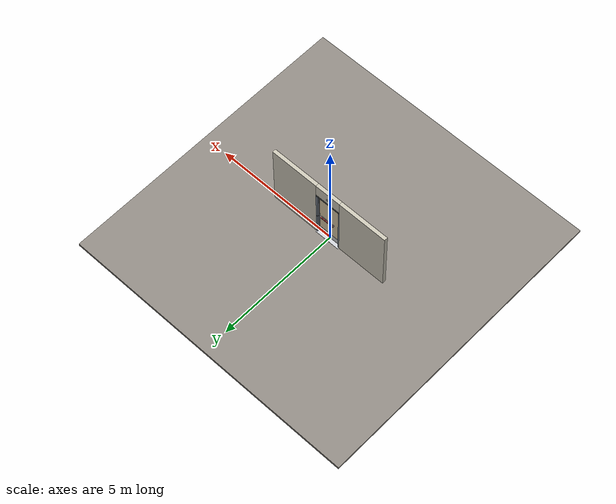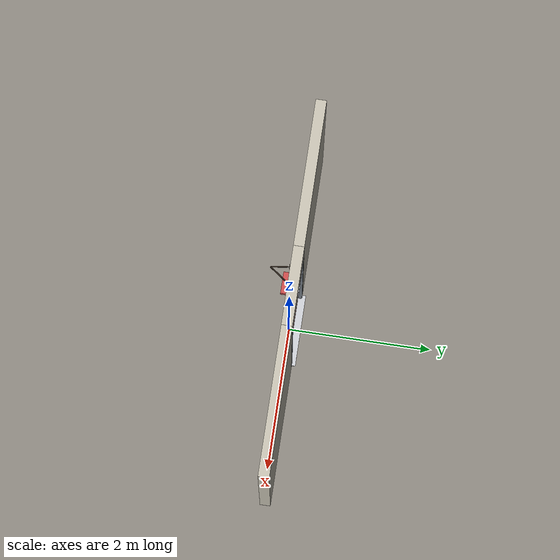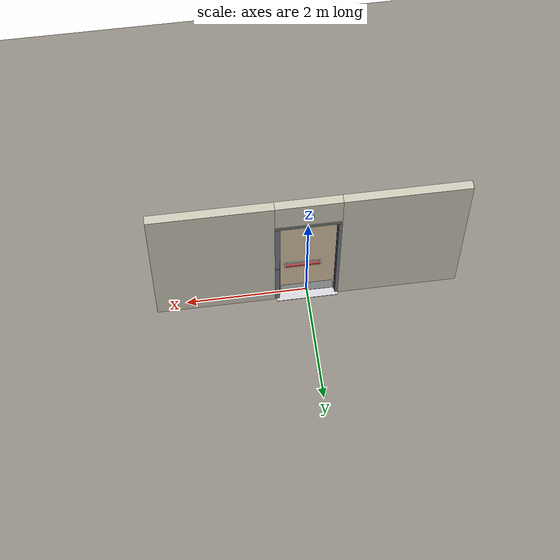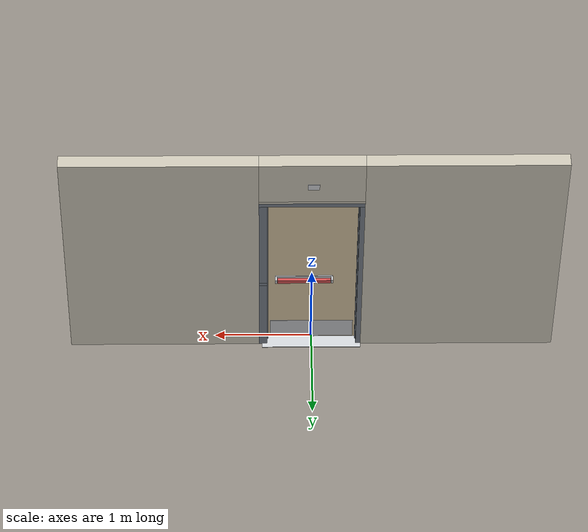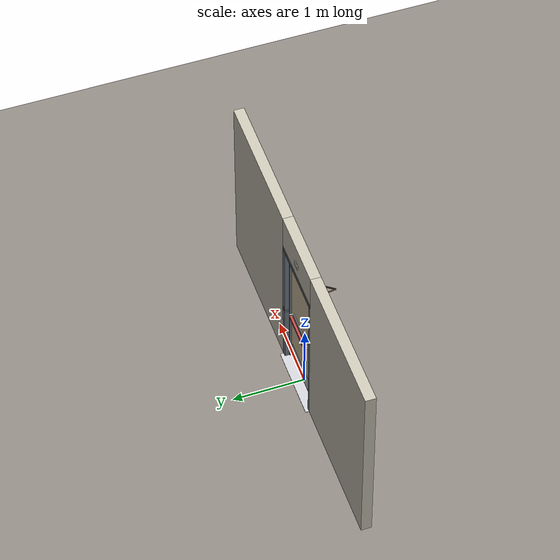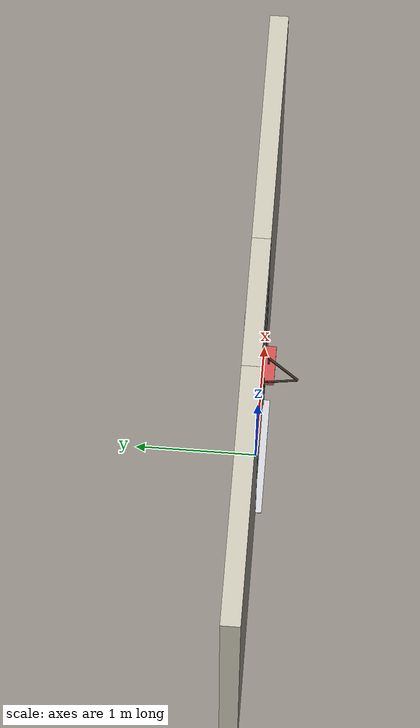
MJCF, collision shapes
<?xml version="1.0" ?>
<mujoco model="db0463_swing_single_full">
  <compiler angle="radian" meshdir="../../hardware" texturedir="../../textures" autolimits="true" inertiafromgeom="false"/>
  <option timestep="0.002" integrator="implicitfast" cone="elliptic" impratio="10" noslip_iterations="3">
    <flag multiccd="enable"/>
  </option>
  <size memory="16M"/>
  <default>
    <geom condim="4" solref="0.005 1" solimp="0.95 0.99 0.001"/>
    <joint solreflimit="0.005 1" solimplimit="0.95 0.99 0.001"/>
    <tendon solreflimit="0.005 1"/>
    <equality solref="0.002 1"/>
  </default>
  <visual>
    <headlight ambient="0.4 0.4 0.4" diffuse="0.7 0.7 0.7" specular="0.2 0.2 0.2"/>
    <quality shadowsize="4096"/>
    <map znear="0.01" zfar="60"/>
  </visual>
  <asset>
    <mesh name="closer_body_fdc4667657" file="closer_body_fdc4667657.obj"/>
    <mesh name="exit_sign_a6449bfa2c" file="exit_sign_a6449bfa2c.obj"/>
    <mesh name="hinge_e22b26c0c1" file="hinge_e22b26c0c1.obj"/>
    <mesh name="hinge_jamb_e1d088f8dc" file="hinge_jamb_e1d088f8dc.obj"/>
    <mesh name="touchbar_pad_5c88f1c24f" file="touchbar_pad_5c88f1c24f.obj"/>
    <material name="mat_floor" rgba="0.55 0.53 0.5 1" specular="0.2" shininess="0.15" reflectance="0"/>
    <material name="mat_wall" rgba="0.78 0.76 0.7 1" specular="0.2" shininess="0.1" reflectance="0"/>
    <material name="mat_leaf" rgba="0.82 0.75 0.62 1" specular="0.23" shininess="0.53" reflectance="0.02"/>
    <material name="mat_leaf_louver" rgba="0.697 0.637 0.527 1" specular="0.2" shininess="0.4" reflectance="0"/>
    <material name="mat_hinge" rgba="0.65 0.66 0.68 1" specular="0.74" shininess="0.5" reflectance="0.36"/>
    <material name="mat_op_stainless" rgba="0.75 0.76 0.77 1" specular="0.8" shininess="0.65" reflectance="0.4"/>
    <material name="mat_bolt" rgba="0.75 0.76 0.77 1" specular="0.8" shininess="0.65" reflectance="0.4"/>
    <material name="mat_frame" rgba="0.45 0.48 0.52 1" specular="0.32" shininess="0.6" reflectance="0.08"/>
    <material name="mat_seal" rgba="0.1 0.1 0.1 1" specular="0.2" shininess="0.1" reflectance="0"/>
    <material name="mat_threshold" rgba="0.8 0.81 0.83 1" specular="0.8" shininess="0.6" reflectance="0.4"/>
    <material name="mat_closer" rgba="0.22 0.17 0.13 1" specular="0.8" shininess="0.6" reflectance="0.4"/>
    <material name="mat_kick" rgba="0.75 0.76 0.77 1" specular="0.8" shininess="0.65" reflectance="0.4"/>
    <material name="mat_exit_sign" rgba="0.85 0.1 0.1 1" specular="0.2" shininess="0.6" reflectance="0"/>
    <material name="mat_sign_bracket" rgba="0.8 0.81 0.83 1" specular="0.8" shininess="0.6" reflectance="0.4"/>
    <material name="mat_placard" rgba="0.95 0.75 0.05 1" specular="0.2" shininess="0.5" reflectance="0"/>
    <texture name="skybox" type="skybox" builtin="gradient" rgb1="0.6 0.7 0.85" rgb2="0.9 0.92 0.95" width="256" height="256"/>
  </asset>
  <worldbody>
    <light name="sun" pos="1.5 -2.5 4" dir="-0.3 0.5 -0.8" directional="true" diffuse="0.8 0.8 0.8" specular="0.3 0.3 0.3" castshadow="true"/>
    <light name="fill" pos="-1.5 2.5 3" dir="0.3 -0.5 -0.7" directional="true" diffuse="0.35 0.35 0.4" castshadow="false"/>
    <camera name="robot_view" pos="0 -2.594313 1.812087" xyaxes="1 0 0 0 0.26963 0.962964" fovy="52"/>
    <camera name="far_view" pos="0 2.681312 1.812087" xyaxes="-1 0 0 0 -0.26963 0.962964" fovy="52"/>
    <camera name="iso" pos="2.004737 -2.172262 2.234138" xyaxes="0.741536 0.670913 0 -0.242917 0.268487 0.932151" fovy="46"/>
    <camera name="detail_handle" pos="0.5335 -0.7565 1.245" xyaxes="0.97561 0.219512 0 -0.070934 0.315262 0.94635" fovy="38"/>
    <geom name="floor" type="box" size="6 6 0.05" pos="0 0 -0.05" material="mat_floor" group="0" contype="1" conaffinity="1" friction="0.8 0.005 0.0001" density="2400"/>
    <geom name="wall_left" type="box" size="0.99475 0.0725 1.3735" pos="-1.50525 0.0435 1.3735" material="mat_wall" group="0" contype="1" conaffinity="1" friction="0.6 0.005 0.0001" density="800"/>
    <geom name="wall_right" type="box" size="0.97975 0.0725 1.3735" pos="1.52025 0.0435 1.3735" material="mat_wall" group="0" contype="1" conaffinity="1" friction="0.6 0.005 0.0001" density="800"/>
    <geom name="wall_header" type="box" size="0.5255 0.0725 0.26" pos="0.015 0.0435 2.487" material="mat_wall" group="0" contype="1" conaffinity="1" friction="0.6 0.005 0.0001" density="800"/>
    <geom name="hinge_0_jamb" type="mesh" mesh="hinge_jamb_e1d088f8dc" pos="-0.4575 -0.029 0.259" material="mat_hinge" group="1" contype="0" conaffinity="0" density="7850"/>
    <geom name="hinge_1_jamb" type="mesh" mesh="hinge_jamb_e1d088f8dc" pos="-0.4575 -0.029 0.827" material="mat_hinge" group="1" contype="0" conaffinity="0" density="7850"/>
    <geom name="hinge_2_jamb" type="mesh" mesh="hinge_jamb_e1d088f8dc" pos="-0.4575 -0.029 1.395" material="mat_hinge" group="1" contype="0" conaffinity="0" density="7850"/>
    <geom name="hinge_3_jamb" type="mesh" mesh="hinge_jamb_e1d088f8dc" pos="-0.4575 -0.029 1.963" material="mat_hinge" group="1" contype="0" conaffinity="0" density="7850"/>
    <geom name="jamb_hinge" type="box" size="0.025 0.0725 1.0735" pos="-0.4855 0.0435 1.0735" material="mat_frame" group="0" contype="1" conaffinity="1" friction="0.6 0.005 0.0001" density="300"/>
    <geom name="strike_965_wall_n" type="box" size="0.04 0.05325 0.018" pos="0.5005 0.06275 0.965" material="mat_frame" group="0" contype="1" conaffinity="1" friction="0.6 0.005 0.0001" density="300"/>
    <geom name="strike_965_wall_p" type="box" size="0.04 0.008 0.018" pos="0.5005 -0.0175 0.965" material="mat_frame" group="0" contype="1" conaffinity="1" friction="0.6 0.005 0.0001" density="300"/>
    <geom name="strike_965_ramp" type="box" size="0.04 0.018028 0.018" pos="0.503782 -0.018312 0.965" quat="0.957092 0 0 0.289784" material="mat_frame" group="0" contype="1" conaffinity="1" friction="0.12 0.005 0.0001" density="300"/>
    <geom name="strike_965_back" type="box" size="0.0285 0.0095 0.018" pos="0.512 0 0.965" material="mat_frame" group="0" contype="1" conaffinity="1" friction="0.6 0.005 0.0001" density="300"/>
    <geom name="jamb_strike_0" type="box" size="0.04 0.0725 0.4735" pos="0.5005 0.0435 0.4735" material="mat_frame" group="0" contype="1" conaffinity="1" friction="0.6 0.005 0.0001" density="300"/>
    <geom name="jamb_strike_1" type="box" size="0.04 0.0725 0.582" pos="0.5005 0.0435 1.565" material="mat_frame" group="0" contype="1" conaffinity="1" friction="0.6 0.005 0.0001" density="300"/>
    <geom name="jamb_head" type="box" size="0.5255 0.0725 0.025" pos="0.015 0.0435 2.172" material="mat_frame" group="0" contype="1" conaffinity="1" friction="0.6 0.005 0.0001" density="300"/>
    <geom name="head_stud" type="box" size="0.5255 0.0725 0.015" pos="0.015 0.0435 2.212" material="mat_wall" group="0" contype="1" conaffinity="1" friction="0.6 0.005 0.0001" density="500"/>
    <geom name="stop_hinge" type="box" size="0.0055 0.016 1.0735" pos="-0.455 0.0385 1.0735" material="mat_frame" group="0" contype="1" conaffinity="1" friction="0.6 0.005 0.0001" density="300"/>
    <geom name="stop_strike" type="box" size="0.0055 0.016 1.0735" pos="0.455 0.0385 1.0735" material="mat_frame" group="0" contype="1" conaffinity="1" friction="0.6 0.005 0.0001" density="300"/>
    <geom name="stop_head" type="box" size="0.4605 0.016 0.0055" pos="0 0.0385 2.1415" material="mat_frame" group="0" contype="1" conaffinity="1" friction="0.6 0.005 0.0001" density="300"/>
    <geom name="seal_hinge" type="box" size="0.004 0.0025 1.0735" pos="-0.4575 0.0245 1.0735" material="mat_seal" group="1" contype="0" conaffinity="0" density="1100"/>
    <geom name="seal_strike" type="box" size="0.004 0.0025 1.0735" pos="0.4575 0.0245 1.0735" material="mat_seal" group="1" contype="0" conaffinity="0" density="1100"/>
    <geom name="seal_head" type="box" size="0.4405 0.0025 0.008" pos="0 0.0245 2.135" material="mat_seal" group="1" contype="0" conaffinity="0" density="1100"/>
    <geom name="threshold" type="box" size="0.5105 0.1225 0.004" pos="0 0.0435 0.004" material="mat_threshold" group="0" contype="1" conaffinity="1" friction="0.6 0.005 0.0001" density="2700"/>
    <geom name="closer_bracket" type="box" size="0.03 0.012 0.014" pos="-0.3605 -0.041 2.177" material="mat_closer" group="1" contype="0" conaffinity="0" density="2700"/>
    <geom name="exit_sign" type="mesh" mesh="exit_sign_a6449bfa2c" pos="0 0.15 2.447" material="mat_exit_sign" group="2" contype="0" conaffinity="0" density="500"/>
    <geom name="exit_sign_bracket" type="box" size="0.05775 0.005 0.035" pos="0 0.1205 2.447" material="mat_sign_bracket" group="2" contype="0" conaffinity="0" density="7850"/>
    <site name="approach_point" pos="0 -1.5 0" quat="1 0 0 0" size="0.05" rgba="0.2 0.9 0.2 0.5" group="4"/>
    <site name="goal_point" pos="0 1.5 0" quat="1 0 0 0" size="0.05" rgba="0.2 0.9 0.2 0.5" group="4"/>
    <site name="door_plane_center" pos="0 0 1.0735" quat="1 0 0 0" size="0.02" rgba="0.2 0.9 0.2 0.5" group="4"/>
    <body name="leaf" pos="-0.4605 0 0">
      <inertial pos="0.420266 -0.01439 1.251644" mass="56.222561" quat="-0.495845 0.470903 0.514451 0.517425" diaginertia="3.383818601 27.577828853 30.864971072"/>
      <joint name="leaf_hinge" type="hinge" axis="0 0 -1" pos="0.003 -0.029 0" limited="true" range="0 1.570796" solreflimit="0.02 1" damping="12.268966" frictionloss="2.029429" stiffness="13.190762" springref="-2.424424" armature="0.02"/>
      <geom name="leaf_slab" type="box" size="0.457 0.022 1.067" pos="0.46 0 1.076" material="mat_leaf" group="0" contype="1" conaffinity="1" friction="0.4 0.005 0.0001" density="1"/>
      <geom name="leaf_louver_0" type="box" size="0.2285 0.002 0.02625" pos="0.46 0 0.284" quat="0.953717 0.300706 0 0" material="mat_leaf_louver" group="1" contype="0" conaffinity="0" density="1"/>
      <geom name="leaf_louver_1" type="box" size="0.2285 0.002 0.02625" pos="0.46 0 0.334" quat="0.953717 0.300706 0 0" material="mat_leaf_louver" group="1" contype="0" conaffinity="0" density="1"/>
      <geom name="leaf_louver_2" type="box" size="0.2285 0.002 0.02625" pos="0.46 0 0.384" quat="0.953717 0.300706 0 0" material="mat_leaf_louver" group="1" contype="0" conaffinity="0" density="1"/>
      <geom name="leaf_louver_3" type="box" size="0.2285 0.002 0.02625" pos="0.46 0 0.434" quat="0.953717 0.300706 0 0" material="mat_leaf_louver" group="1" contype="0" conaffinity="0" density="1"/>
      <geom name="leaf_louver_4" type="box" size="0.2285 0.002 0.02625" pos="0.46 0 0.484" quat="0.953717 0.300706 0 0" material="mat_leaf_louver" group="1" contype="0" conaffinity="0" density="1"/>
      <geom name="leaf_louver_5" type="box" size="0.2285 0.002 0.02625" pos="0.46 0 0.534" quat="0.953717 0.300706 0 0" material="mat_leaf_louver" group="1" contype="0" conaffinity="0" density="1"/>
      <geom name="leaf_louver_6" type="box" size="0.2285 0.002 0.02625" pos="0.46 0 0.584" quat="0.953717 0.300706 0 0" material="mat_leaf_louver" group="1" contype="0" conaffinity="0" density="1"/>
      <geom name="leaf_louver_7" type="box" size="0.2285 0.002 0.02625" pos="0.46 0 0.634" quat="0.953717 0.300706 0 0" material="mat_leaf_louver" group="1" contype="0" conaffinity="0" density="1"/>
      <geom name="leaf_louver_8" type="box" size="0.2285 0.002 0.02625" pos="0.46 0 0.684" quat="0.953717 0.300706 0 0" material="mat_leaf_louver" group="1" contype="0" conaffinity="0" density="1"/>
      <geom name="hinge_0" type="mesh" mesh="hinge_e22b26c0c1" pos="0.003 -0.029 0.259" material="mat_hinge" group="1" contype="0" conaffinity="0" density="7850"/>
      <geom name="hinge_1" type="mesh" mesh="hinge_e22b26c0c1" pos="0.003 -0.029 0.827" material="mat_hinge" group="1" contype="0" conaffinity="0" density="7850"/>
      <geom name="hinge_2" type="mesh" mesh="hinge_e22b26c0c1" pos="0.003 -0.029 1.395" material="mat_hinge" group="1" contype="0" conaffinity="0" density="7850"/>
      <geom name="hinge_3" type="mesh" mesh="hinge_e22b26c0c1" pos="0.003 -0.029 1.963" material="mat_hinge" group="1" contype="0" conaffinity="0" density="7850"/>
      <geom name="leaf_exit_device_rail" type="box" size="0.2942 0.006 0.025" pos="0.5428 0.028 0.965" material="mat_op_stainless" group="0" contype="1" conaffinity="1" friction="0.6 0.005 0.0001" density="3000"/>
      <geom name="leaf_exit_device_rail_end_n" type="box" size="0.01 0.0325 0.025" pos="0.2586 0.0545 0.965" material="mat_op_stainless" group="0" contype="1" conaffinity="1" friction="0.6 0.005 0.0001" density="3000"/>
      <geom name="leaf_exit_device_rail_end_p" type="box" size="0.01 0.0325 0.025" pos="0.827 0.0545 0.965" material="mat_op_stainless" group="0" contype="1" conaffinity="1" friction="0.6 0.005 0.0001" density="3000"/>
      <geom name="leaf_latch_bolt_faceplate" type="box" size="0.0006 0.014 0.028" pos="0.9164 0 0.965" material="mat_bolt" group="1" contype="0" conaffinity="0" density="8500"/>
      <geom name="closer_body" type="mesh" mesh="closer_body_fdc4667657" pos="0.3 -0.022 2.054" quat="0.707107 0.707107 0 0" material="mat_closer" group="1" contype="0" conaffinity="0" density="2000"/>
      <geom name="closer_body_col" type="box" size="0.145 0.05 0.035" pos="0.3 -0.072 2.054" material="mat_closer" group="3" contype="1" conaffinity="1" rgba="0.8 0.3 0.3 0.25" friction="0.6 0.005 0.0001" density="2000"/>
      <geom name="closer_pinion_shaft" type="cylinder" size="0.008 0.0615" pos="0.3 -0.072 2.1155" material="mat_closer" group="1" contype="0" conaffinity="0" density="2700"/>
      <geom name="kick_plate_p" type="box" size="0.427 0.0008 0.125" pos="0.46 0.0228 0.144" material="mat_kick" group="2" contype="0" conaffinity="0" density="7900"/>
      <geom name="warning_placard" type="box" size="0.11 0.001 0.08" pos="0.46 -0.023 1.6095" material="mat_placard" group="2" contype="0" conaffinity="0" density="1000"/>
      <site name="leaf_edge_mid" pos="0.917 0 1.067" quat="1 0 0 0" size="0.02" rgba="0.2 0.9 0.2 0.5" group="4"/>
      <body name="leaf_exit_device" pos="0.5428 0.022 0.965">
        <inertial pos="0 0.05 0" mass="4.39344" quat="0 0 0.707107 0.707107" diaginertia="0.001070901 0.108041192 0.108453077"/>
        <joint name="leaf_exit_device_slide" type="slide" axis="0 -1 0" limited="true" range="0 0.016" damping="153.70715" frictionloss="0.5" stiffness="1300" springref="-0.015385" armature="0.15"/>
        <geom name="leaf_exit_device_pad" type="mesh" mesh="touchbar_pad_5c88f1c24f" pos="0 0 0" quat="-0.707107 0.707107 0 0" material="mat_op_stainless" group="1" contype="0" conaffinity="0" density="3000"/>
        <geom name="leaf_exit_device_pad_col" type="box" size="0.2712 0.015 0.0225" pos="0 0.05 0" material="mat_op_stainless" group="3" contype="1" conaffinity="1" rgba="0.8 0.3 0.3 0.25" friction="0.8 0.01 0.0001" density="3000"/>
        <site name="leaf_exit_device_push" pos="0 0.065 0" quat="1 0 0 0" size="0.015" rgba="0.2 0.9 0.2 0.5" group="4"/>
      </body>
      <body name="leaf_latch_bolt" pos="0.917 0 0.965">
        <inertial pos="-0.0055 0 0" mass="0.074627" quat="0.92388 -0.382683 0 0" diaginertia="0.000002271 0.000013255 0.000013255"/>
        <joint name="leaf_latch_bolt_slide" type="slide" axis="-1 0 0" limited="true" range="0 0.019" damping="2" frictionloss="0.3" stiffness="550" springref="-0.01" armature="0.1"/>
        <geom name="leaf_latch_bolt_capsule" type="capsule" size="0.008 0.0165" pos="-0.0055 0 0" quat="0.707107 0 0.707107 0" material="mat_bolt" group="0" contype="1" conaffinity="1" friction="0.2 0.005 0.0001" density="8500"/>
      </body>
      <body name="closer_arm_main" pos="0.3 -0.072 2.177" quat="0.454107 0 0 -0.890947">
        <inertial pos="0.14 0 0" mass="0.12096" quat="1 0 0 0" diaginertia="0.000003588 0.00079128 0.000792852"/>
        <joint name="closer_pinion" type="hinge" axis="0 0 1" limited="false" damping="0.01" armature="0.002"/>
        <geom name="closer_arm_main_geom" type="box" size="0.14 0.008 0.005" pos="0.14 0 0" material="mat_closer" group="1" contype="0" conaffinity="0" density="2700"/>
        <body name="closer_arm_fore" pos="0.28 0 0" quat="-0.373215 0 0 0.927745">
          <inertial pos="0.128088 0 0" mass="0.076531" quat="1 0 0 0" diaginertia="0.000001771 0.000437665 0.000438201"/>
          <joint name="closer_elbow" type="hinge" axis="0 0 1" limited="false" damping="0.01" armature="0.002"/>
          <geom name="closer_arm_fore_geom" type="box" size="0.1125 0.007 0.004" pos="0.1125 0 0" material="mat_closer" group="1" contype="0" conaffinity="0" density="2700"/>
          <geom name="closer_fore_neck" type="box" size="0.0175 0.003 0.003" pos="0.2425 0 0" material="mat_closer" group="1" contype="0" conaffinity="0" density="2700"/>
          <geom name="closer_fore_pivot" type="cylinder" size="0.005 0.012" pos="0.26 0 0" material="mat_closer" group="1" contype="0" conaffinity="0" density="2700"/>
        </body>
      </body>
    </body>
  </worldbody>
  <tendon>
    <fixed name="leaf_latch_bolt_coupling" limited="true" range="0 10">
      <joint joint="leaf_latch_bolt_slide" coef="1"/>
      <joint joint="leaf_exit_device_slide" coef="-1.357143"/>
    </fixed>
  </tendon>
  <equality>
    <connect name="closer_arm_connect" body1="closer_arm_fore" body2="world" anchor="0.26 0 0" active="true"/>
  </equality>
  <contact>
    <exclude body1="closer_arm_main" body2="leaf"/>
    <exclude body1="closer_arm_fore" body2="leaf"/>
    <exclude body1="closer_arm_main" body2="closer_arm_fore"/>
  </contact>
  <sensor>
    <jointpos name="leaf_hinge_pos" joint="leaf_hinge"/>
    <jointvel name="leaf_hinge_vel" joint="leaf_hinge"/>
    <jointpos name="leaf_exit_device_slide_pos" joint="leaf_exit_device_slide"/>
    <jointvel name="leaf_exit_device_slide_vel" joint="leaf_exit_device_slide"/>
    <jointpos name="leaf_latch_bolt_slide_pos" joint="leaf_latch_bolt_slide"/>
    <jointvel name="leaf_latch_bolt_slide_vel" joint="leaf_latch_bolt_slide"/>
  </sensor>
</mujoco>
